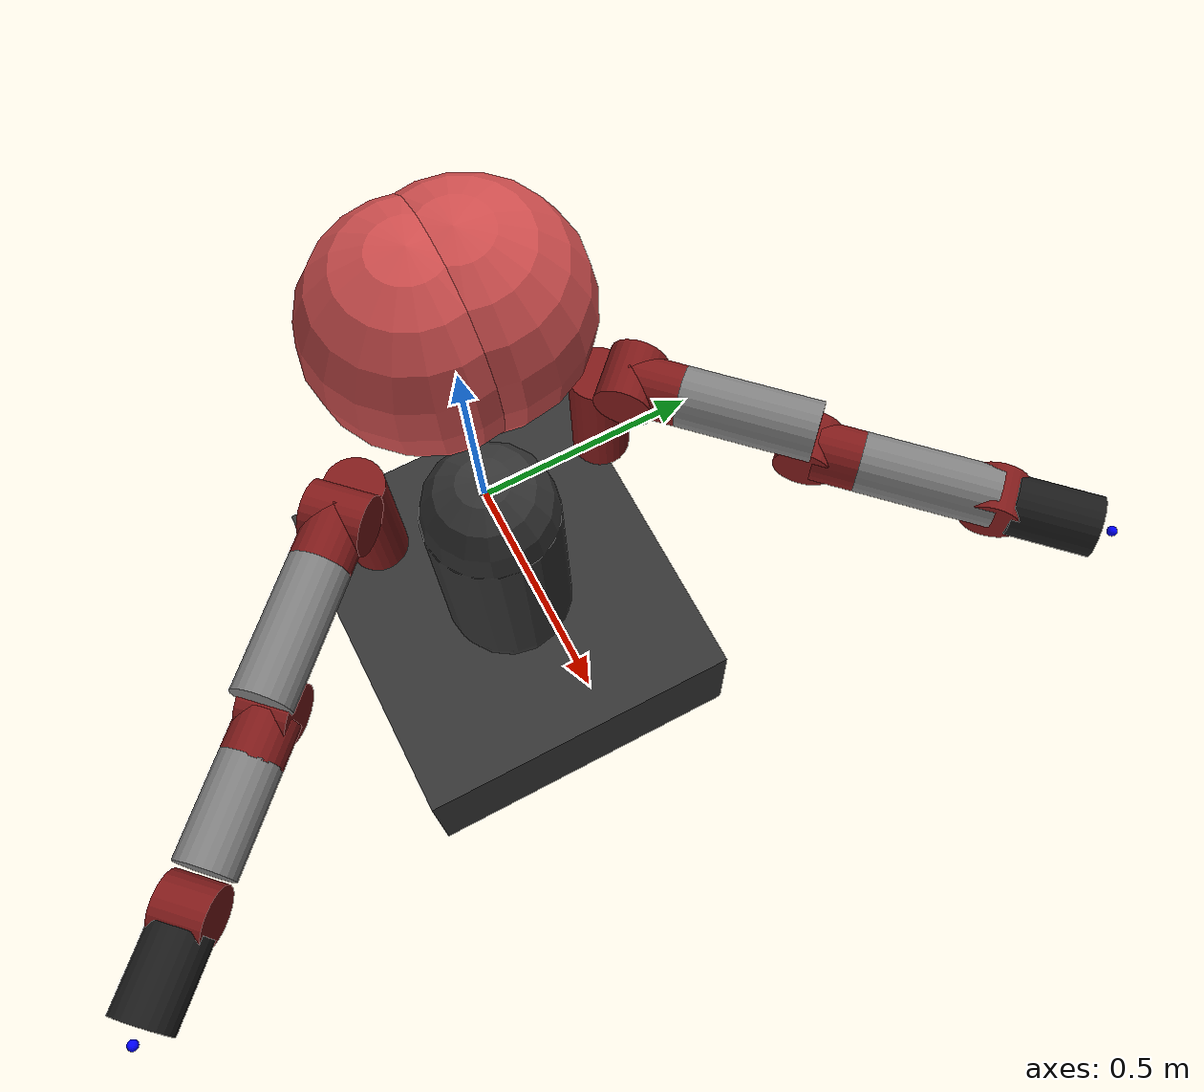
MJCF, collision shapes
<mujoco model="baxter">
  <compiler coordinate="local" angle="radian" strippath="false" />
  <size njmax="795" nconmax="250" nstack="631875" />
  <asset>
    <mesh name="base_link" file="meshes/torso/base_link.stl" />
    <mesh name="base_link_collision" file="meshes/torso/base_link_collision.stl" />
    <mesh name="PEDESTAL" file="meshes/base/PEDESTAL.stl" />
    <mesh name="pedestal_link_collision" file="meshes/base/pedestal_link_collision.stl" />
    <mesh name="H0" file="meshes/head/H0.stl" />
    <mesh name="H1" file="meshes/head/H1.stl" />
    <mesh name="S0" file="meshes/upper_shoulder/S0.stl" />
    <mesh name="S1" file="meshes/lower_shoulder/S1.stl" />
    <mesh name="E0" file="meshes/upper_elbow/E0.stl" />
    <mesh name="E1" file="meshes/lower_elbow/E1.stl" />
    <mesh name="W0" file="meshes/upper_forearm/W0.stl" />
    <mesh name="W1" file="meshes/lower_forearm/W1.stl" />
    <mesh name="W2" file="meshes/wrist/W2.stl" />

    <!-- Custom textures based on body names for domain randomization -->

    <!-- NOTE: ideally the alpha would be 0.3 here, but no way to set that in material -->
    <texture type="cube" name="collision_head_link_1_tex" builtin="flat" width="100" height="100" rgb1="0.8 0.3 0.3" rgb2="0.8 0.3 0.3"/>
    <texture type="cube" name="base_link_tex" builtin="flat" width="100" height="100" rgb1="0.5 0.5 0.5" rgb2="0.5 0.5 0.5"/>
    <texture type="cube" name="pedestal_tex" builtin="flat" width="100" height="100" rgb1="0.2 0.2 0.2" rgb2="0.2 0.2 0.2"/>
    <texture type="cube" name="head_tex" builtin="flat" width="100" height="100" rgb1="0.2 0.2 0.2" rgb2="0.2 0.2 0.2"/>
    <texture type="cube" name="screen1_tex" builtin="flat" width="100" height="100" rgb1="0.5 0.1 0.1" rgb2="0.5 0.1 0.1"/>
    <texture type="cube" name="screen2_tex" builtin="flat" width="100" height="100" rgb1="0.9 0.9 0.9" rgb2="0.9 0.9 0.9"/>
    <texture type="cube" name="arm_tex" builtin="flat" width="100" height="100" rgb1="0.5 0.1 0.1" rgb2="0.5 0.1 0.1"/>
    <texture type="cube" name="elbow_tex" builtin="flat" width="100" height="100" rgb1="0.5 0.5 0.5" rgb2="0.5 0.5 0.5"/>
    <texture type="cube" name="wrist_tex" builtin="flat" width="100" height="100" rgb1="0.1 0.1 0.1" rgb2="0.1 0.1 0.1"/>

    <!-- Custom mats based on body names for domain randomization -->
    <material name="collision_head_link_1_mat" texture="collision_head_link_1_tex"/>
    <material name="base_link_mat" texture="base_link_tex"/>
    <material name="pedestal_mat" texture="pedestal_tex"/>
    <material name="head_mat" texture="head_tex"/>
    <material name="screen1_mat" texture="screen1_tex"/>
    <material name="screen2_mat" texture="screen2_tex"/>
    <material name="arm_mat" texture="arm_tex"/>
    <material name="elbow_mat" texture="elbow_tex"/>
    <material name="wrist_mat" texture="wrist_tex"/>
  </asset>

  <visual>
    <map fogstart="1.5" fogend="3" />
    <quality shadowsize="2048" />
  </visual>
  <default>
    <default class="viz">
      <geom margin="0.001" contype="0" conaffinity="0" group="1" type="mesh" />
    </default>
  </default>
  <contact>
    <exclude body1="right_upper_shoulder" body2="torso" />
    <exclude body1="right_upper_shoulder" body2="right_upper_elbow" />
    <exclude body1="right_lower_shoulder" body2="torso" />
    <exclude body1="left_upper_shoulder" body2="torso" />
    <exclude body1="left_upper_shoulder" body2="left_upper_elbow" />
    <exclude body1="left_lower_shoulder" body2="torso" />
    <exclude body1="collision_head_link_1" body2="torso" />
    <exclude body1="collision_head_link_2" body2="torso" />
  </contact>
  <worldbody>
    <body name="base" pos="0 0 0">
      <!-- robot view -->
      <camera mode="fixed" name="robotview" pos="1.3 0 0.4" quat="0.653 0.271 0.271 0.653"/>
      <inertial pos="0 0 0" mass="10" diaginertia="0.001 0.001 0.001" />
      <body name="collision_head_link_1" pos="0.11 0 0.75">
        <inertial pos="0 0 0" mass="0.0001" diaginertia="1e-008 1e-008 1e-008" />
        <geom name="collision_head_link_1_vis" margin="0.001" type="sphere" class="viz" size="0.001" material="collision_head_link_1_mat" pos="0 0 0" />
        <geom margin="0.001" type="sphere" size="0.22" rgba="0.8 0.3 0.3 0.3" pos="-0.07 -0.04 0"/>
      </body>
      <body name="collision_head_link_2" pos="0.11 0 0.75">
        <inertial pos="0 0 0" mass="0.0001" diaginertia="1e-008 1e-008 1e-008" />
        <geom margin="0.001" type="sphere" size="0.001" rgba="0.8 0.3 0.3 0.3" pos="0 0 0" />
        <geom margin="0.001" type="sphere" size="0.22" rgba="0.8 0.3 0.3 0.3" pos="-0.07 0.04 0" />
      </body>
      <body name="torso" pos="0 0 0">
        <inertial pos="0 0 0" quat="0.997433 0.00167178 0.0715546 -0.00209003" mass="35.3365" diaginertia="1.87139 1.66268 0.779991" />
        <geom name="base_link_vis" margin="0.001" class="viz" mesh="base_link" material="base_link_mat"/>
        <geom margin="0.001" type="mesh" mesh="base_link_collision" class="viz"/>
        <body name="pedestal" pos="0 0 0">
          <inertial pos="0 0 0" quat="0.659267 -0.259505 -0.260945 0.655692" mass="60.864" diaginertia="6.0869 5.81635 4.20915" />
          <geom name="pedestal_vis" margin="0.001" class="viz" material="pedestal_mat" mesh="PEDESTAL" />
          <geom margin="0.001" pos="-.04 0 -.8" rgba="0.2 0.2 0.2 1" type="box" size=".46 .425 .16" />
          <geom margin="0.001" pos="0 0 -.35" rgba="0.2 0.2 0.2 1" type="capsule" size=".165 .25" />
        </body>
        <body name="head" pos="0.06 0 0.686">
          <inertial pos="0 0 0" quat="0.339345 0.850736 -0.347392 0.201027" mass="0.547767" diaginertia="0.00474065 0.00461087 0.00199949" />
          <joint limited="true" damping="0" armature=".01" name="head_pan" type="hinge" pos="0 0 0" axis="0 0 1" range="-1.5708 1.5708" />
          <geom name="head_vis" margin="0.001" class="viz" material="head_mat" mesh="H0" />
          <body name="screen" pos="0.1227 0 0" quat="0.453099 0.542864 0.542864 0.453099">
            <inertial pos="0 0 0" quat="0.995785 0.0113501 -0.000390852 0.0910132" mass="0.440171" diaginertia="0.0040484 0.00275826 0.00150834" />
            <geom name="screen1_vis" margin="0.001" class="viz" material="screen1_mat" mesh="H1" pos="0 0 -.03" euler="0 -1.57 0" />
            <geom name="screen2_vis" margin="0.001" class="viz" type="box" size="0.109 0.08 0.002" material="screen2_mat" pos="0 -0.016 0" quat="0.991445 0.130526 0 0" />
          </body>
        </body>
        <body name="right_arm_mount" pos="0.024645 -0.219645 0.118588" quat="0.923879 0 0 -0.382684">
          <inertial pos="0 0 0" mass="0.0001" diaginertia="1e-008 1e-008 1e-008" />
          <body name="right_upper_shoulder" pos="0.055695 0 0.011038">
            <inertial pos="0.01783 0.00086 0.19127" quat="0.975667 0.0673303 -0.206117 0.0325173" mass="5.70044" diaginertia="0.0498344 0.0377511 0.0331351" />
            <joint limited="true" damping="0" armature=".01" name="right_s0" type="hinge" pos="0 0 0" axis="0 0 1" range="-1.70168 1.70168" />
            <geom name="right_s0_vis" margin="0.001" class="viz" material="arm_mat" mesh="S0" />
            <geom margin="0.001" type="cylinder" size="0.06 0.1361" rgba="0.5 0.1 0.1 1" pos="0 0 0.1361" name="right_s0_collision"/>
            <body name="right_lower_shoulder" pos="0.069 0 0.27035" quat="0.707107 -0.707107 0 0">
              <inertial pos="0.06845 0.00269 -0.00529" quat="0.447487 0.536948 0.56425 0.439391" mass="3.22698" diaginertia="0.0278991 0.0212327 0.0112937" />
              <joint limited="true" damping="0" armature=".01" name="right_s1" type="hinge" pos="0 0 0" axis="0 0 1" range="-2.147 1.047" />
              <geom name="right_s1_vis" margin="0.001" class="viz" material="arm_mat" mesh="S1" />
              <geom margin="0.001" type="cylinder" size="0.06 0.06" rgba="0.5 0.1 0.1 1" pos="0 0 0" name="right_s1_collision"/>
              <body name="right_upper_elbow" pos="0.102 0 0" quat="0.5 0.5 0.5 0.5">
                <inertial pos="-0.00276 0.00132 0.18086" quat="0.838995 -0.0423128 -0.121287 0.52876" mass="4.31272" diaginertia="0.0287695 0.0273625 0.011409" />
                <joint limited="true" damping="0" armature=".01" name="right_e0" type="hinge" pos="0 0 0" axis="0 0 1" range="-3.05418 3.05418" />
                <geom name="right_e0_vis" margin="0.001" class="viz" material="arm_mat" mesh="E0" />
                <geom margin="0.001" type="cylinder" size="0.06 0.0535" rgba="0.5 0.1 0.1 1" pos="0 0 -0.0535" name="right_e0_collision"/>
                <geom margin="0.001" name="right_upper_elbow_vis" type="cylinder" size="0.06 0.1365" pos="0 0 0.1365" class="viz" material="elbow_mat"/>
                <body name="right_lower_elbow" pos="0.069 0 0.26242" quat="0.5 -0.5 -0.5 -0.5">
                  <inertial pos="0.02611 0.00159 -0.01117" quat="0.440433 0.577149 0.562777 0.395221" mass="2.07206" diaginertia="0.0132096 0.00950002 0.00685697" />
                  <joint limited="true" damping="0" armature=".01" name="right_e1" type="hinge" pos="0 0 0" axis="0 0 1" range="-0.05 2.618" />
                  <geom name="right_e1_vis" margin="0.001" class="viz" material="arm_mat" mesh="E1" />
                  <geom margin="0.001" type="cylinder" size="0.06 0.05" rgba="0.5 0.1 0.1 1" pos="0 0 0" name="right_e1_collision" />
                  <body name="right_upper_forearm" pos="0.10359 0 0" quat="0.5 0.5 0.5 0.5">
                    <inertial pos="-0.00168 0.0046 0.13952" quat="0.892709 -0.0256256 0.00446984 0.449882" mass="2.24665" diaginertia="0.016916 0.0165511 0.00371123" />
                    <joint limited="true" damping="0" armature=".01" name="right_w0" type="hinge" pos="0 0 0" axis="0 0 1" range="-3.059 3.059" />
                    <geom name="right_w0_vis" margin="0.001" class="viz" material="arm_mat" mesh="W0" />
                    <geom margin="0.001" type="cylinder" size="0.06 0.044" rgba="0.5 0.1 0.1 1" pos="0 0 -0.044" name="right_w0_collision" />
                    <geom margin="0.001" name="right_upper_forearm_vis" type="cylinder" size="0.06 0.1036" pos="0 0 0.1" class="viz" material="elbow_mat"/>
                    <body name="right_lower_forearm" pos="0.01 0 0.2707" quat="0.5 -0.5 -0.5 -0.5">
                      <inertial pos="0.06041 0.00697 0.006" quat="0.456911 0.468526 0.475683 0.587743" mass="1.60979" diaginertia="0.00708828 0.00552689 0.00379383" />
                      <joint limited="true" damping="0" armature=".01" name="right_w1" type="hinge" pos="0 0 0" axis="0 0 1" range="-1.5708 2.094" />
                      <geom name="right_w1_vis" margin="0.001" class="viz" material="arm_mat" mesh="W1" />
                      <geom margin="0.001" type="cylinder" size="0.06 0.05" rgba="0.5 0.1 0.1 1" pos="0 0 0" name="right_w1_collision" />
                      <body name="right_wrist" pos="0.115975 0 0" quat="0.5 0.5 0.5 0.5">
                        <inertial pos="0.00198 0.00125 0.01855" quat="0.0594843 0.68926 -0.16016 0.704082" mass="0.35093" diaginertia="0.0003082 0.000269928 0.000251035" />
                        <joint limited="true" damping="0" armature=".01" name="right_w2" type="hinge" pos="0 0 0" axis="0 0 1" range="-3.059 3.059" />
                        <geom name="right_w2_vis" margin="0.001" class="viz" material="wrist_mat" mesh="W2" />
                        <geom margin="0.001" type="cylinder" size="0.06 0.0825" rgba="0.1 0.1 0.1 1" pos="0 0 0" name="right_w2_collision" />
                        <body name="right_hand" pos="0 0 0.11355">
                          <!-- This sites were added for visualization. They are all standardized between models-->
                          <!-- Position mimics the gripper attachment point (right_hand) -->
                          <!--  Y-axis should be perpendicular to grasping motion, and Z-axis should point out of the robot eef -->
                          <site name="right_ee" pos="0 0 0" size="0.01 0.01 0.01" rgba="0 0 1 1" type="sphere" group="1"/>
                          <site name="right_ee_x" pos="0 0 0" size="0.005 .1"  quat="0.707105 0.707108 0 0 " rgba="1 0 0 0" type="cylinder" group="1"/>
                          <site name="right_ee_z" pos="0 0 0" size="0.005 .1" quat="0.707105 0 0 0.707108" rgba="0 0 1 0" type="cylinder" group="1"/>
                          <site name="right_ee_y" pos="0 0 0" size="0.005 .1" quat="0.707105 0 0.707108 0 " rgba="0 1 0 0" type="cylinder" group="1"/>
				          <!-- This camera points out from the eef. -->
                          <camera mode="fixed" name="right_eye_in_hand" pos="0.05 0 0" quat="0 0.707108 0.707108 0" fovy="75"/>
                          <!-- right gripper gets added here -->
                        </body>
                      </body>
                    </body>
                  </body>
                </body>
              </body>
            </body>
          </body>
        </body>
        <body name="left_arm_mount" pos="0.024645 0.219645 0.118588" quat="0.923879 0 0 0.382684">
          <inertial pos="0 0 0" mass="0.0001" diaginertia="1e-008 1e-008 1e-008" />
          <body name="left_upper_shoulder" pos="0.055695 0 0.011038">
            <inertial pos="0.01783 0.00086 0.19127" quat="0.975667 0.0673303 -0.206117 0.0325173" mass="5.70044" diaginertia="0.0498344 0.0377511 0.0331351" />
            <joint limited="true" damping="0" armature=".01" name="left_s0" type="hinge" pos="0 0 0" axis="0 0 1" range="-1.70168 1.70168" />
            <geom name="left_s0_vis" margin="0.001" class="viz" material="arm_mat" mesh="S0" />
            <geom margin="0.001" type="cylinder" size="0.06 0.1361" rgba="0.5 0.1 0.1 1" pos="0 0 0.1361" name="left_s0_collision" />
            <body name="left_lower_shoulder" pos="0.069 0 0.27035" quat="0.707107 -0.707107 0 0">
              <inertial pos="0.06845 0.00269 -0.00529" quat="0.447487 0.536948 0.56425 0.439391" mass="3.22698" diaginertia="0.0278991 0.0212327 0.0112937" />
              <joint limited="true" damping="0" armature=".01" name="left_s1" type="hinge" pos="0 0 0" axis="0 0 1" range="-2.147 1.047" />
              <geom name="left_s1_vis" margin="0.001" class="viz" material="arm_mat" mesh="S1" />
              <geom margin="0.001" type="cylinder" size="0.06 0.06" rgba="0.5 0.1 0.1 1" pos="0 0 0" name="left_s1_collision" />
              <body name="left_upper_elbow" pos="0.102 0 0" quat="0.5 0.5 0.5 0.5">
                <inertial pos="-0.00276 0.00132 0.18086" quat="0.838995 -0.0423128 -0.121287 0.52876" mass="4.31272" diaginertia="0.0287695 0.0273625 0.011409" />
                <joint limited="true" damping="0" armature=".01" name="left_e0" type="hinge" pos="0 0 0" axis="0 0 1" range="-3.05418 3.05418" />
                <geom name="left_e0_vis" margin="0.001" class="viz" material="arm_mat" mesh="E0" />
                <geom margin="0.001" type="cylinder" size="0.06 0.0535" rgba="0.5 0.1 0.1 1" pos="0 0 -0.0535" name="left_e0_collision" />
                <geom margin="0.001" name="left_upper_elbow_vis" type="cylinder" size="0.06 0.1365" pos="0 0 0.1365" class="viz" material="elbow_mat"/>
                <body name="left_lower_elbow" pos="0.069 0 0.26242" quat="0.5 -0.5 -0.5 -0.5">
                  <inertial pos="0.02611 0.00159 -0.01117" quat="0.440433 0.577149 0.562777 0.395221" mass="2.07206" diaginertia="0.0132096 0.00950002 0.00685697" />
                  <joint limited="true" damping="0" armature=".01" name="left_e1" type="hinge" pos="0 0 0" axis="0 0 1" range="-0.05 2.618" />
                  <geom name="left_e1_vis" margin="0.001" class="viz" material="arm_mat" mesh="E1" />
                  <geom margin="0.001" type="cylinder" size="0.06 0.05" rgba="0.5 0.1 0.1 1" pos="0 0 0" name="left_e1_collision" />
                  <body name="left_upper_forearm" pos="0.10359 0 0" quat="0.5 0.5 0.5 0.5">
                    <inertial pos="-0.00168 0.0046 0.13952" quat="0.892709 -0.0256256 0.00446984 0.449882" mass="2.24665" diaginertia="0.016916 0.0165511 0.00371123" />
                    <joint limited="true" damping="0" armature=".01" name="left_w0" type="hinge" pos="0 0 0" axis="0 0 1" range="-3.059 3.059" />
                    <geom name="left_w0_vis" margin="0.001" class="viz" material="arm_mat" mesh="W0" />
                    <geom margin="0.001" type="cylinder" size="0.06 0.044" rgba="0.5 0.1 0.1 1" pos="0 0 -0.044" name="left_w0_collision" />
                    <geom margin="0.001" name="left_upper_forearm_vis" type="cylinder" size="0.06 0.136" pos="0 0 0.136" class="viz" material="elbow_mat"/>
                    <body name="left_lower_forearm" pos="0.01 0 0.2707" quat="0.5 -0.5 -0.5 -0.5">
                      <inertial pos="0.06041 0.00697 0.006" quat="0.456911 0.468526 0.475683 0.587743" mass="1.60979" diaginertia="0.00708828 0.00552689 0.00379383" />
                      <joint limited="true" damping="0" armature=".01" name="left_w1" type="hinge" pos="0 0 0" axis="0 0 1" range="-1.5708 2.094" />
                      <geom name="left_w1_vis" margin="0.001" class="viz" material="arm_mat" mesh="W1" />
                      <geom margin="0.001" type="cylinder" size="0.06 0.05" rgba="0.5 0.1 0.1 1" pos="0 0 0" name="left_w1_collision" />
                      <body name="left_wrist" pos="0.115975 0 0" quat="0.5 0.5 0.5 0.5">
                        <inertial pos="0.00198 0.00125 0.01855" quat="0.0594843 0.68926 -0.16016 0.704082" mass="0.35093" diaginertia="0.0003082 0.000269928 0.000251035" />
                        <joint limited="true" damping="0" armature=".01" name="left_w2" type="hinge" pos="0 0 0" axis="0 0 1" range="-3.059 3.059" />
                        <geom name="left_w2_vis" margin="0.001" class="viz" material="wrist_mat" mesh="W2" />
                        <geom margin="0.001" type="cylinder" size="0.06 0.0825" rgba="0.1 0.1 0.1 1" pos="0 0 0" name="left_w2_collision" />
                        <body name="left_hand" pos="0 0 0.11355">
                          <!-- This sites were added for visualization. They are all standardized between models-->
                          <!-- Position mimics the gripper attachment point (right_hand) -->
                          <!--  Y-axis should be perpendicular to grasping motion, and Z-axis should point out of the robot eef -->
                          <site name="left_ee" pos="0 0 0" size="0.01 0.01 0.01" rgba="0 0 1 1" type="sphere" group="1"/>
                          <site name="left_ee_x" pos="0 0 0" size="0.005 .1"  quat="0.707105 0.707108 0 0 " rgba="1 0 0 0" type="cylinder" group="1"/>
                          <site name="left_ee_z" pos="0 0 0" size="0.005 .1" quat="0.707105 0 0 0.707108" rgba="0 0 1 0" type="cylinder" group="1"/>
                          <site name="left_ee_y" pos="0 0 0" size="0.005 .1" quat="0.707105 0 0.707108 0 " rgba="0 1 0 0" type="cylinder" group="1"/>
       				      <!-- This camera points out from the eef. -->
                          <camera mode="fixed" name="left_eye_in_hand" pos="0.05 0 0" quat="0 0.707108 0.707108 0" fovy="75"/>
                          <!-- left gripper gets added here -->
                        </body>
                      </body>
                    </body>
                  </body>
                </body>
              </body>
            </body>
          </body>
        </body>
      </body>
    </body>
  </worldbody>
  <actuator>

    <motor ctrllimited="true" ctrlrange="-50 50" joint="right_s0" name="torq_right_j0"/>
    <motor ctrllimited="true" ctrlrange="-100 100" joint="right_s1" name="torq_right_j1"/>
    <motor ctrllimited="true" ctrlrange="-50 50" joint="right_e0" name="torq_right_j2"/>
    <motor ctrllimited="true" ctrlrange="-50 50" joint="right_e1" name="torq_right_j3"/>
    <motor ctrllimited="true" ctrlrange="-15 15" joint="right_w0" name="torq_right_j4"/>
    <motor ctrllimited="true" ctrlrange="-15 15" joint="right_w1" name="torq_right_j5"/>
    <motor ctrllimited="true" ctrlrange="-15 15" joint="right_w2" name="torq_right_j6"/>

    <motor ctrllimited="true" ctrlrange="-50 50" joint="left_s0" name="torq_left_j0"/>
    <motor ctrllimited="true" ctrlrange="-100 100" joint="left_s1" name="torq_left_j1"/>
    <motor ctrllimited="true" ctrlrange="-50 50" joint="left_e0" name="torq_left_j2"/>
    <motor ctrllimited="true" ctrlrange="-50 50" joint="left_e1" name="torq_left_j3"/>
    <motor ctrllimited="true" ctrlrange="-15 15" joint="left_w0" name="torq_left_j4"/>
    <motor ctrllimited="true" ctrlrange="-15 15" joint="left_w1" name="torq_left_j5"/>
    <motor ctrllimited="true" ctrlrange="-15 15" joint="left_w2" name="torq_left_j6"/>

</actuator>
</mujoco>
